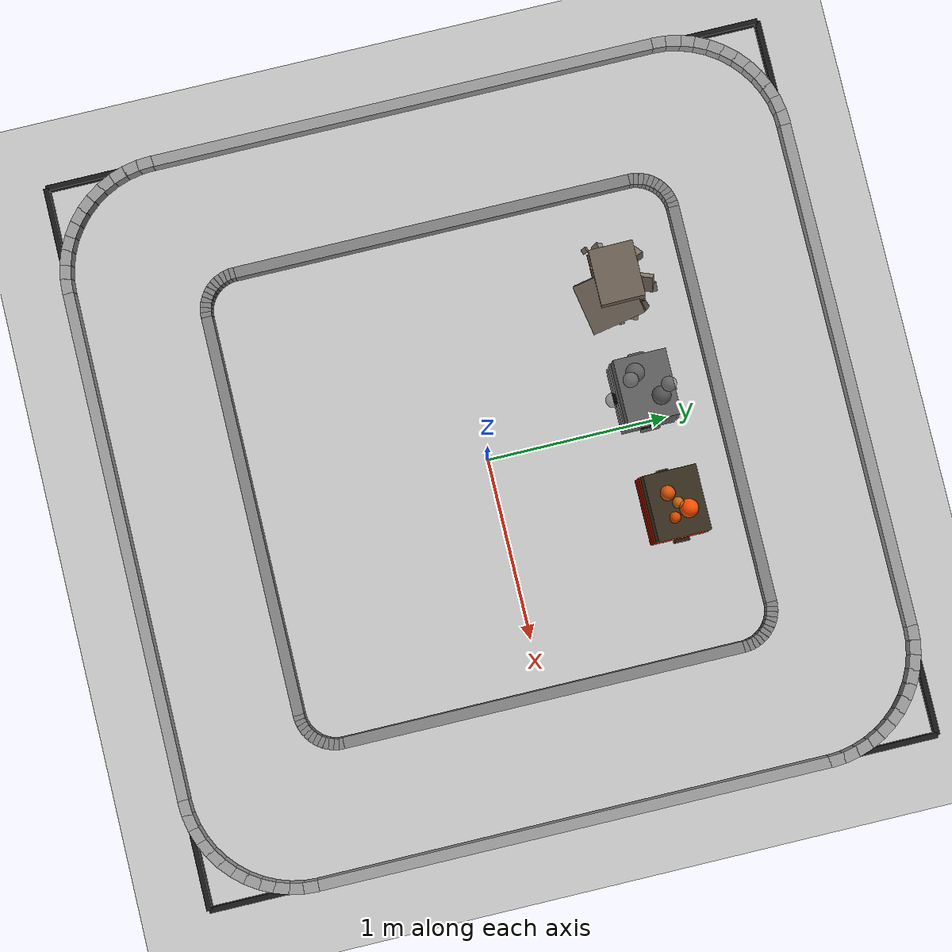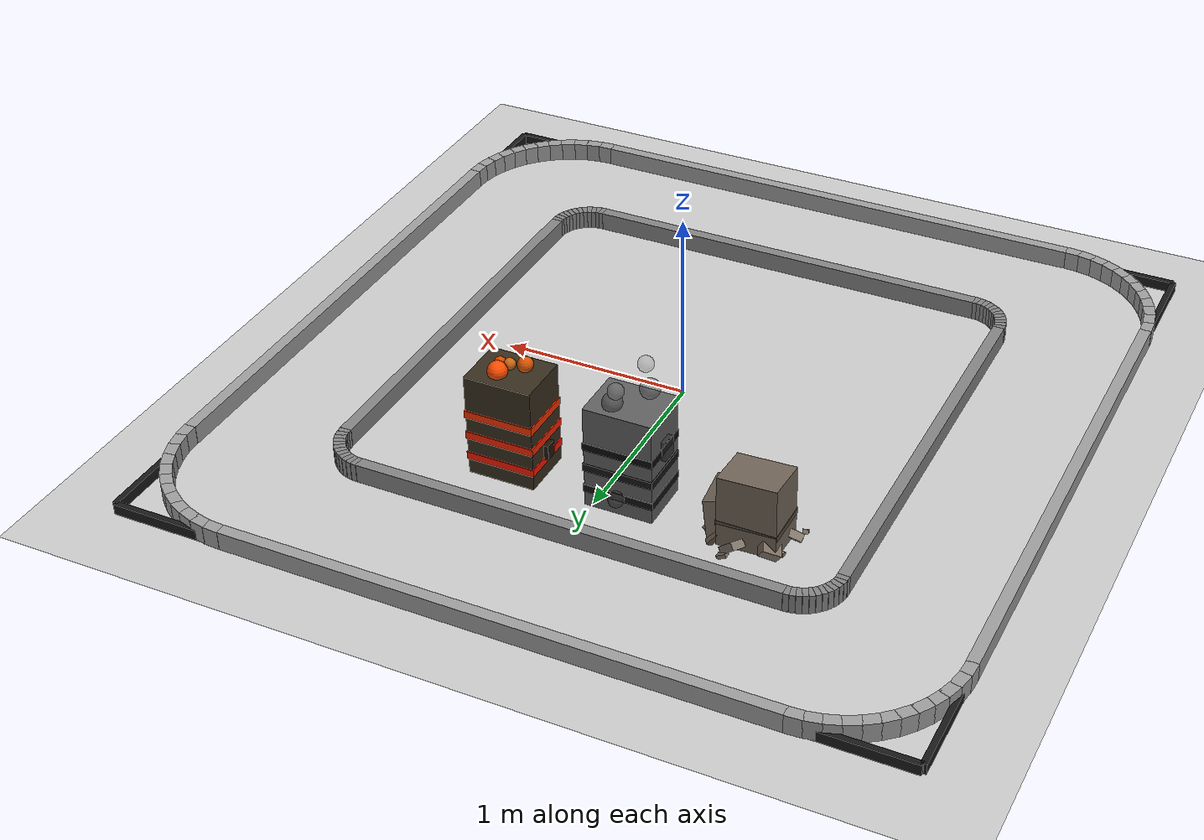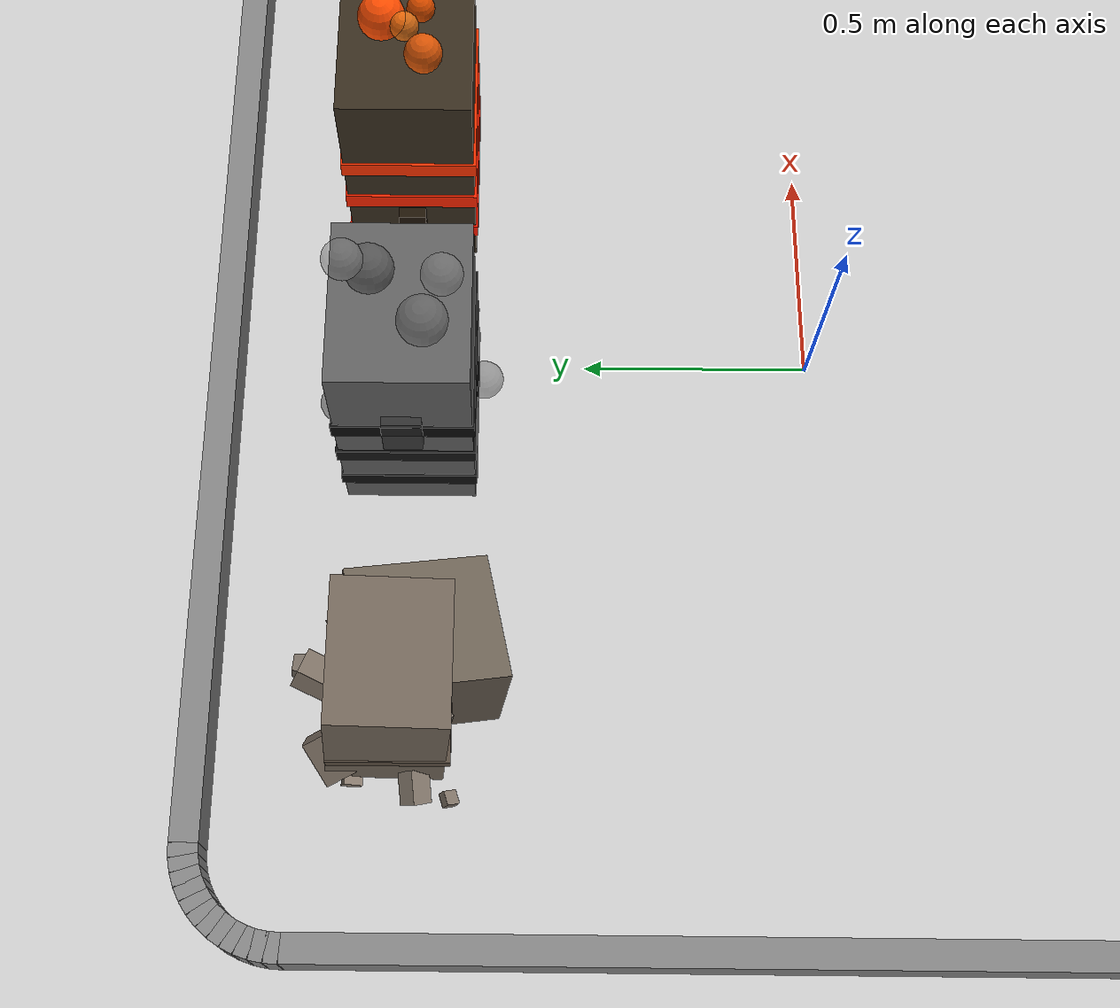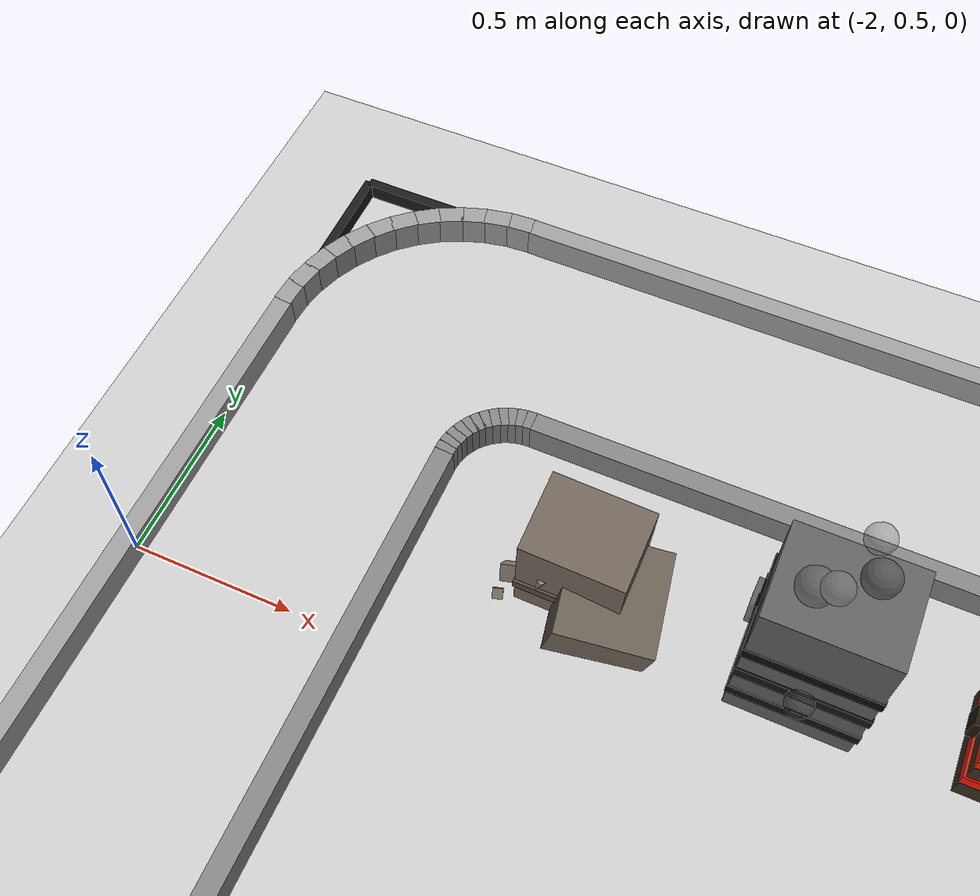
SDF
<sdf version="1.6">
 <world name="test">
  <light name="sun" type="directional">
   <pose>0 0 10 0 -0 0</pose>
   <diffuse>0.8 0.8 0.8 1</diffuse>
   <specular>0.2 0.2 0.2 1</specular>
   <attenuation>
    <range>1000</range>
    <constant>0.9</constant>
    <linear>0.01</linear>
    <quadratic>0.001</quadratic>
   </attenuation>
   <direction>-0.5 0.1 -0.9</direction>
  </light>
  <model name="ground_plane">
   <static>1</static>
   <link name="link">
    <collision name="collision">
     <geometry><plane><normal>0 0 1</normal><size>100 100</size></plane></geometry>
     <surface><friction><ode><mu>100</mu><mu2>50</mu2></ode></friction></surface>
    </collision>
    <visual name="visual">
     <cast_shadows>0</cast_shadows>
     <geometry><plane><normal>0 0 1</normal><size>100 100</size></plane></geometry>
     <material>
      <script><uri>file://media/materials/scripts/gazebo.material</uri><name>Gazebo/Grey</name></script>
     </material>
    </visual>
   </link>
  </model>
  <model name="boundary_line">
   <static>1</static>
   <link name="n">
    <pose>0 2 0.001 0 -0 0</pose>
    <visual name="v">
     <geometry><box><size>4 0.03 0.1</size></box></geometry>
     <material><ambient>0.1 0.1 0.1 1</ambient></material>
    </visual>
   </link>
   <link name="s">
    <pose>0 -2 0.001 0 -0 0</pose>
    <visual name="v">
     <geometry><box><size>4 0.03 0.1</size></box></geometry>
     <material><ambient>0.1 0.1 0.1 1</ambient></material>
    </visual>
   </link>
   <link name="e">
    <pose>2 0 0.001 0 -0 0</pose>
    <visual name="v">
     <geometry><box><size>0.03 4 0.1</size></box></geometry>
     <material><ambient>0.1 0.1 0.1 1</ambient></material>
    </visual>
   </link>
   <link name="w">
    <pose>-2 0 0.001 0 -0 0</pose>
    <visual name="v">
     <geometry><box><size>0.03 4 0.1</size></box></geometry>
     <material><ambient>0.1 0.1 0.1 1</ambient></material>
    </visual>
   </link>
  </model>
  <model name="track_outer">
   <static>1</static>
   <link name="top">
    <pose>0 2 0.05 0 -0 0</pose>
    <visual name="v">
     <geometry><box><size>2.8 0.06 0.1</size></box></geometry>
     <material><ambient>0.62 0.62 0.62 1</ambient></material>
    </visual>
    <collision name="c"><geometry><box><size>2.8 0.06 0.1</size></box></geometry></collision>
   </link>
   <link name="bottom">
    <pose>0 -2 0.05 0 -0 0</pose>
    <visual name="v">
     <geometry><box><size>2.8 0.06 0.1</size></box></geometry>
     <material><ambient>0.62 0.62 0.62 1</ambient></material>
    </visual>
    <collision name="c"><geometry><box><size>2.8 0.06 0.1</size></box></geometry></collision>
   </link>
   <link name="left">
    <pose>-2 0 0.05 0 -0 0</pose>
    <visual name="v">
     <geometry><box><size>0.06 2.8 0.1</size></box></geometry>
     <material><ambient>0.62 0.62 0.62 1</ambient></material>
    </visual>
    <collision name="c"><geometry><box><size>0.06 2.8 0.1</size></box></geometry></collision>
   </link>
   <link name="right">
    <pose>2 0 0.05 0 -0 0</pose>
    <visual name="v">
     <geometry><box><size>0.06 2.8 0.1</size></box></geometry>
     <material><ambient>0.62 0.62 0.62 1</ambient></material>
    </visual>
    <collision name="c"><geometry><box><size>0.06 2.8 0.1</size></box></geometry></collision>
   </link>
   <link name="tr0">
    <pose>1.9987 1.4392 0.05 0 -0 1.6362</pose>
    <visual name="v">
     <geometry><box><size>0.0848 0.06 0.1</size></box></geometry>
     <material><ambient>0.62 0.62 0.62 1</ambient></material>
    </visual>
    <collision name="c"><geometry><box><size>0.0848 0.06 0.1</size></box></geometry></collision>
   </link>
   <link name="tr1">
    <pose>1.9885 1.5171 0.05 0 -0 1.7671</pose>
    <visual name="v">
     <geometry><box><size>0.0848 0.06 0.1</size></box></geometry>
     <material><ambient>0.62 0.62 0.62 1</ambient></material>
    </visual>
    <collision name="c"><geometry><box><size>0.0848 0.06 0.1</size></box></geometry></collision>
   </link>
   <link name="tr2">
    <pose>1.9682 1.5929 0.05 0 -0 1.898</pose>
    <visual name="v">
     <geometry><box><size>0.0848 0.06 0.1</size></box></geometry>
     <material><ambient>0.62 0.62 0.62 1</ambient></material>
    </visual>
    <collision name="c"><geometry><box><size>0.0848 0.06 0.1</size></box></geometry></collision>
   </link>
   <link name="tr3">
    <pose>1.9381 1.6654 0.05 0 -0 2.0289</pose>
    <visual name="v">
     <geometry><box><size>0.0848 0.06 0.1</size></box></geometry>
     <material><ambient>0.62 0.62 0.62 1</ambient></material>
    </visual>
    <collision name="c"><geometry><box><size>0.0848 0.06 0.1</size></box></geometry></collision>
   </link>
   <link name="tr4">
    <pose>1.8989 1.7333 0.05 0 -0 2.1598</pose>
    <visual name="v">
     <geometry><box><size>0.0848 0.06 0.1</size></box></geometry>
     <material><ambient>0.62 0.62 0.62 1</ambient></material>
    </visual>
    <collision name="c"><geometry><box><size>0.0848 0.06 0.1</size></box></geometry></collision>
   </link>
   <link name="tr5">
    <pose>1.8511 1.7956 0.05 0 -0 2.2907</pose>
    <visual name="v">
     <geometry><box><size>0.0848 0.06 0.1</size></box></geometry>
     <material><ambient>0.62 0.62 0.62 1</ambient></material>
    </visual>
    <collision name="c"><geometry><box><size>0.0848 0.06 0.1</size></box></geometry></collision>
   </link>
   <link name="tr6">
    <pose>1.7956 1.8511 0.05 0 -0 2.4216</pose>
    <visual name="v">
     <geometry><box><size>0.0848 0.06 0.1</size></box></geometry>
     <material><ambient>0.62 0.62 0.62 1</ambient></material>
    </visual>
    <collision name="c"><geometry><box><size>0.0848 0.06 0.1</size></box></geometry></collision>
   </link>
   <link name="tr7">
    <pose>1.7333 1.8989 0.05 0 -0 2.5525</pose>
    <visual name="v">
     <geometry><box><size>0.0848 0.06 0.1</size></box></geometry>
     <material><ambient>0.62 0.62 0.62 1</ambient></material>
    </visual>
    <collision name="c"><geometry><box><size>0.0848 0.06 0.1</size></box></geometry></collision>
   </link>
   <link name="tr8">
    <pose>1.6654 1.9381 0.05 0 -0 2.6834</pose>
    <visual name="v">
     <geometry><box><size>0.0848 0.06 0.1</size></box></geometry>
     <material><ambient>0.62 0.62 0.62 1</ambient></material>
    </visual>
    <collision name="c"><geometry><box><size>0.0848 0.06 0.1</size></box></geometry></collision>
   </link>
   <link name="tr9">
    <pose>1.5929 1.9682 0.05 0 -0 2.8143</pose>
    <visual name="v">
     <geometry><box><size>0.0848 0.06 0.1</size></box></geometry>
     <material><ambient>0.62 0.62 0.62 1</ambient></material>
    </visual>
    <collision name="c"><geometry><box><size>0.0848 0.06 0.1</size></box></geometry></collision>
   </link>
   <link name="tr10">
    <pose>1.5171 1.9885 0.05 0 -0 2.9452</pose>
    <visual name="v">
     <geometry><box><size>0.0848 0.06 0.1</size></box></geometry>
     <material><ambient>0.62 0.62 0.62 1</ambient></material>
    </visual>
    <collision name="c"><geometry><box><size>0.0848 0.06 0.1</size></box></geometry></collision>
   </link>
   <link name="tr11">
    <pose>1.4392 1.9987 0.05 0 -0 3.0761</pose>
    <visual name="v">
     <geometry><box><size>0.0848 0.06 0.1</size></box></geometry>
     <material><ambient>0.62 0.62 0.62 1</ambient></material>
    </visual>
    <collision name="c"><geometry><box><size>0.0848 0.06 0.1</size></box></geometry></collision>
   </link>
   <link name="tl0">
    <pose>-1.4392 1.9987 0.05 0 -0 -3.07619</pose>
    <visual name="v">
     <geometry><box><size>0.0848 0.06 0.1</size></box></geometry>
     <material><ambient>0.62 0.62 0.62 1</ambient></material>
    </visual>
    <collision name="c"><geometry><box><size>0.0848 0.06 0.1</size></box></geometry></collision>
   </link>
   <link name="tl1">
    <pose>-1.5171 1.9885 0.05 0 -0 -2.94529</pose>
    <visual name="v">
     <geometry><box><size>0.0848 0.06 0.1</size></box></geometry>
     <material><ambient>0.62 0.62 0.62 1</ambient></material>
    </visual>
    <collision name="c"><geometry><box><size>0.0848 0.06 0.1</size></box></geometry></collision>
   </link>
   <link name="tl2">
    <pose>-1.5929 1.9682 0.05 0 -0 -2.81439</pose>
    <visual name="v">
     <geometry><box><size>0.0848 0.06 0.1</size></box></geometry>
     <material><ambient>0.62 0.62 0.62 1</ambient></material>
    </visual>
    <collision name="c"><geometry><box><size>0.0848 0.06 0.1</size></box></geometry></collision>
   </link>
   <link name="tl3">
    <pose>-1.6654 1.9381 0.05 0 -0 -2.68349</pose>
    <visual name="v">
     <geometry><box><size>0.0848 0.06 0.1</size></box></geometry>
     <material><ambient>0.62 0.62 0.62 1</ambient></material>
    </visual>
    <collision name="c"><geometry><box><size>0.0848 0.06 0.1</size></box></geometry></collision>
   </link>
   <link name="tl4">
    <pose>-1.7333 1.8989 0.05 0 -0 -2.55259</pose>
    <visual name="v">
     <geometry><box><size>0.0848 0.06 0.1</size></box></geometry>
     <material><ambient>0.62 0.62 0.62 1</ambient></material>
    </visual>
    <collision name="c"><geometry><box><size>0.0848 0.06 0.1</size></box></geometry></collision>
   </link>
   <link name="tl5">
    <pose>-1.7956 1.8511 0.05 0 -0 -2.42169</pose>
    <visual name="v">
     <geometry><box><size>0.0848 0.06 0.1</size></box></geometry>
     <material><ambient>0.62 0.62 0.62 1</ambient></material>
    </visual>
    <collision name="c"><geometry><box><size>0.0848 0.06 0.1</size></box></geometry></collision>
   </link>
   <link name="tl6">
    <pose>-1.8511 1.7956 0.05 0 -0 -2.29079</pose>
    <visual name="v">
     <geometry><box><size>0.0848 0.06 0.1</size></box></geometry>
     <material><ambient>0.62 0.62 0.62 1</ambient></material>
    </visual>
    <collision name="c"><geometry><box><size>0.0848 0.06 0.1</size></box></geometry></collision>
   </link>
   <link name="tl7">
    <pose>-1.8989 1.7333 0.05 0 -0 -2.15989</pose>
    <visual name="v">
     <geometry><box><size>0.0848 0.06 0.1</size></box></geometry>
     <material><ambient>0.62 0.62 0.62 1</ambient></material>
    </visual>
    <collision name="c"><geometry><box><size>0.0848 0.06 0.1</size></box></geometry></collision>
   </link>
   <link name="tl8">
    <pose>-1.9381 1.6654 0.05 0 -0 -2.02899</pose>
    <visual name="v">
     <geometry><box><size>0.0848 0.06 0.1</size></box></geometry>
     <material><ambient>0.62 0.62 0.62 1</ambient></material>
    </visual>
    <collision name="c"><geometry><box><size>0.0848 0.06 0.1</size></box></geometry></collision>
   </link>
   <link name="tl9">
    <pose>-1.9682 1.5929 0.05 0 -0 -1.89809</pose>
    <visual name="v">
     <geometry><box><size>0.0848 0.06 0.1</size></box></geometry>
     <material><ambient>0.62 0.62 0.62 1</ambient></material>
    </visual>
    <collision name="c"><geometry><box><size>0.0848 0.06 0.1</size></box></geometry></collision>
   </link>
   <link name="tl10">
    <pose>-1.9885 1.5171 0.05 0 -0 -1.76719</pose>
    <visual name="v">
     <geometry><box><size>0.0848 0.06 0.1</size></box></geometry>
     <material><ambient>0.62 0.62 0.62 1</ambient></material>
    </visual>
    <collision name="c"><geometry><box><size>0.0848 0.06 0.1</size></box></geometry></collision>
   </link>
   <link name="tl11">
    <pose>-1.9987 1.4392 0.05 0 -0 -1.63628</pose>
    <visual name="v">
     <geometry><box><size>0.0848 0.06 0.1</size></box></geometry>
     <material><ambient>0.62 0.62 0.62 1</ambient></material>
    </visual>
    <collision name="c"><geometry><box><size>0.0848 0.06 0.1</size></box></geometry></collision>
   </link>
   <link name="bl0">
    <pose>-1.9987 -1.4392 0.05 0 -0 -1.50538</pose>
    <visual name="v">
     <geometry><box><size>0.0848 0.06 0.1</size></box></geometry>
     <material><ambient>0.62 0.62 0.62 1</ambient></material>
    </visual>
    <collision name="c"><geometry><box><size>0.0848 0.06 0.1</size></box></geometry></collision>
   </link>
   <link name="bl1">
    <pose>-1.9885 -1.5171 0.05 0 -0 -1.37448</pose>
    <visual name="v">
     <geometry><box><size>0.0848 0.06 0.1</size></box></geometry>
     <material><ambient>0.62 0.62 0.62 1</ambient></material>
    </visual>
    <collision name="c"><geometry><box><size>0.0848 0.06 0.1</size></box></geometry></collision>
   </link>
   <link name="bl2">
    <pose>-1.9682 -1.5929 0.05 0 -0 -1.24358</pose>
    <visual name="v">
     <geometry><box><size>0.0848 0.06 0.1</size></box></geometry>
     <material><ambient>0.62 0.62 0.62 1</ambient></material>
    </visual>
    <collision name="c"><geometry><box><size>0.0848 0.06 0.1</size></box></geometry></collision>
   </link>
   <link name="bl3">
    <pose>-1.9381 -1.6654 0.05 0 -0 -1.11268</pose>
    <visual name="v">
     <geometry><box><size>0.0848 0.06 0.1</size></box></geometry>
     <material><ambient>0.62 0.62 0.62 1</ambient></material>
    </visual>
    <collision name="c"><geometry><box><size>0.0848 0.06 0.1</size></box></geometry></collision>
   </link>
   <link name="bl4">
    <pose>-1.8989 -1.7333 0.05 0 -0 -0.981785</pose>
    <visual name="v">
     <geometry><box><size>0.0848 0.06 0.1</size></box></geometry>
     <material><ambient>0.62 0.62 0.62 1</ambient></material>
    </visual>
    <collision name="c"><geometry><box><size>0.0848 0.06 0.1</size></box></geometry></collision>
   </link>
   <link name="bl5">
    <pose>-1.8511 -1.7956 0.05 0 -0 -0.850885</pose>
    <visual name="v">
     <geometry><box><size>0.0848 0.06 0.1</size></box></geometry>
     <material><ambient>0.62 0.62 0.62 1</ambient></material>
    </visual>
    <collision name="c"><geometry><box><size>0.0848 0.06 0.1</size></box></geometry></collision>
   </link>
   <link name="bl6">
    <pose>-1.7956 -1.8511 0.05 0 -0 -0.719985</pose>
    <visual name="v">
     <geometry><box><size>0.0848 0.06 0.1</size></box></geometry>
     <material><ambient>0.62 0.62 0.62 1</ambient></material>
    </visual>
    <collision name="c"><geometry><box><size>0.0848 0.06 0.1</size></box></geometry></collision>
   </link>
   <link name="bl7">
    <pose>-1.7333 -1.8989 0.05 0 -0 -0.589085</pose>
    <visual name="v">
     <geometry><box><size>0.0848 0.06 0.1</size></box></geometry>
     <material><ambient>0.62 0.62 0.62 1</ambient></material>
    </visual>
    <collision name="c"><geometry><box><size>0.0848 0.06 0.1</size></box></geometry></collision>
   </link>
   <link name="bl8">
    <pose>-1.6654 -1.9381 0.05 0 -0 -0.458185</pose>
    <visual name="v">
     <geometry><box><size>0.0848 0.06 0.1</size></box></geometry>
     <material><ambient>0.62 0.62 0.62 1</ambient></material>
    </visual>
    <collision name="c"><geometry><box><size>0.0848 0.06 0.1</size></box></geometry></collision>
   </link>
   <link name="bl9">
    <pose>-1.5929 -1.9682 0.05 0 -0 -0.327285</pose>
    <visual name="v">
     <geometry><box><size>0.0848 0.06 0.1</size></box></geometry>
     <material><ambient>0.62 0.62 0.62 1</ambient></material>
    </visual>
    <collision name="c"><geometry><box><size>0.0848 0.06 0.1</size></box></geometry></collision>
   </link>
   <link name="bl10">
    <pose>-1.5171 -1.9885 0.05 0 -0 -0.196385</pose>
    <visual name="v">
     <geometry><box><size>0.0848 0.06 0.1</size></box></geometry>
     <material><ambient>0.62 0.62 0.62 1</ambient></material>
    </visual>
    <collision name="c"><geometry><box><size>0.0848 0.06 0.1</size></box></geometry></collision>
   </link>
   <link name="bl11">
    <pose>-1.4392 -1.9987 0.05 0 -0 -0.065485</pose>
    <visual name="v">
     <geometry><box><size>0.0848 0.06 0.1</size></box></geometry>
     <material><ambient>0.62 0.62 0.62 1</ambient></material>
    </visual>
    <collision name="c"><geometry><box><size>0.0848 0.06 0.1</size></box></geometry></collision>
   </link>
   <link name="br0">
    <pose>1.4392 -1.9987 0.05 0 -0 0.065415</pose>
    <visual name="v">
     <geometry><box><size>0.0848 0.06 0.1</size></box></geometry>
     <material><ambient>0.62 0.62 0.62 1</ambient></material>
    </visual>
    <collision name="c"><geometry><box><size>0.0848 0.06 0.1</size></box></geometry></collision>
   </link>
   <link name="br1">
    <pose>1.5171 -1.9885 0.05 0 -0 0.196315</pose>
    <visual name="v">
     <geometry><box><size>0.0848 0.06 0.1</size></box></geometry>
     <material><ambient>0.62 0.62 0.62 1</ambient></material>
    </visual>
    <collision name="c"><geometry><box><size>0.0848 0.06 0.1</size></box></geometry></collision>
   </link>
   <link name="br2">
    <pose>1.5929 -1.9682 0.05 0 -0 0.327215</pose>
    <visual name="v">
     <geometry><box><size>0.0848 0.06 0.1</size></box></geometry>
     <material><ambient>0.62 0.62 0.62 1</ambient></material>
    </visual>
    <collision name="c"><geometry><box><size>0.0848 0.06 0.1</size></box></geometry></collision>
   </link>
   <link name="br3">
    <pose>1.6654 -1.9381 0.05 0 -0 0.458115</pose>
    <visual name="v">
     <geometry><box><size>0.0848 0.06 0.1</size></box></geometry>
     <material><ambient>0.62 0.62 0.62 1</ambient></material>
    </visual>
    <collision name="c"><geometry><box><size>0.0848 0.06 0.1</size></box></geometry></collision>
   </link>
   <link name="br4">
    <pose>1.7333 -1.8989 0.05 0 -0 0.589015</pose>
    <visual name="v">
     <geometry><box><size>0.0848 0.06 0.1</size></box></geometry>
     <material><ambient>0.62 0.62 0.62 1</ambient></material>
    </visual>
    <collision name="c"><geometry><box><size>0.0848 0.06 0.1</size></box></geometry></collision>
   </link>
   <link name="br5">
    <pose>1.7956 -1.8511 0.05 0 -0 0.719915</pose>
    <visual name="v">
     <geometry><box><size>0.0848 0.06 0.1</size></box></geometry>
     <material><ambient>0.62 0.62 0.62 1</ambient></material>
    </visual>
    <collision name="c"><geometry><box><size>0.0848 0.06 0.1</size></box></geometry></collision>
   </link>
   <link name="br6">
    <pose>1.8511 -1.7956 0.05 0 -0 0.850815</pose>
    <visual name="v">
     <geometry><box><size>0.0848 0.06 0.1</size></box></geometry>
     <material><ambient>0.62 0.62 0.62 1</ambient></material>
    </visual>
    <collision name="c"><geometry><box><size>0.0848 0.06 0.1</size></box></geometry></collision>
   </link>
   <link name="br7">
    <pose>1.8989 -1.7333 0.05 0 -0 0.981715</pose>
    <visual name="v">
     <geometry><box><size>0.0848 0.06 0.1</size></box></geometry>
     <material><ambient>0.62 0.62 0.62 1</ambient></material>
    </visual>
    <collision name="c"><geometry><box><size>0.0848 0.06 0.1</size></box></geometry></collision>
   </link>
   <link name="br8">
    <pose>1.9381 -1.6654 0.05 0 -0 1.11261</pose>
    <visual name="v">
     <geometry><box><size>0.0848 0.06 0.1</size></box></geometry>
     <material><ambient>0.62 0.62 0.62 1</ambient></material>
    </visual>
    <collision name="c"><geometry><box><size>0.0848 0.06 0.1</size></box></geometry></collision>
   </link>
   <link name="br9">
    <pose>1.9682 -1.5929 0.05 0 -0 1.24351</pose>
    <visual name="v">
     <geometry><box><size>0.0848 0.06 0.1</size></box></geometry>
     <material><ambient>0.62 0.62 0.62 1</ambient></material>
    </visual>
    <collision name="c"><geometry><box><size>0.0848 0.06 0.1</size></box></geometry></collision>
   </link>
   <link name="br10">
    <pose>1.9885 -1.5171 0.05 0 -0 1.37441</pose>
    <visual name="v">
     <geometry><box><size>0.0848 0.06 0.1</size></box></geometry>
     <material><ambient>0.62 0.62 0.62 1</ambient></material>
    </visual>
    <collision name="c"><geometry><box><size>0.0848 0.06 0.1</size></box></geometry></collision>
   </link>
   <link name="br11">
    <pose>1.9987 -1.4392 0.05 0 -0 1.50531</pose>
    <visual name="v">
     <geometry><box><size>0.0848 0.06 0.1</size></box></geometry>
     <material><ambient>0.62 0.62 0.62 1</ambient></material>
    </visual>
    <collision name="c"><geometry><box><size>0.0848 0.06 0.1</size></box></geometry></collision>
   </link>
  </model>
  <model name="track_inner">
   <static>1</static>
   <link name="top">
    <pose>0 1.3 0.05 0 -0 0</pose>
    <visual name="v">
     <geometry><box><size>2.2 0.06 0.1</size></box></geometry>
     <material><ambient>0.52 0.52 0.52 1</ambient></material>
    </visual>
    <collision name="c"><geometry><box><size>2.2 0.06 0.1</size></box></geometry></collision>
   </link>
   <link name="bottom">
    <pose>0 -1.3 0.05 0 -0 0</pose>
    <visual name="v">
     <geometry><box><size>2.2 0.06 0.1</size></box></geometry>
     <material><ambient>0.52 0.52 0.52 1</ambient></material>
    </visual>
    <collision name="c"><geometry><box><size>2.2 0.06 0.1</size></box></geometry></collision>
   </link>
   <link name="left">
    <pose>-1.3 0 0.05 0 -0 0</pose>
    <visual name="v">
     <geometry><box><size>0.06 2.2 0.1</size></box></geometry>
     <material><ambient>0.52 0.52 0.52 1</ambient></material>
    </visual>
    <collision name="c"><geometry><box><size>0.06 2.2 0.1</size></box></geometry></collision>
   </link>
   <link name="right">
    <pose>1.3 0 0.05 0 -0 0</pose>
    <visual name="v">
     <geometry><box><size>0.06 2.2 0.1</size></box></geometry>
     <material><ambient>0.52 0.52 0.52 1</ambient></material>
    </visual>
    <collision name="c"><geometry><box><size>0.06 2.2 0.1</size></box></geometry></collision>
   </link>
   <link name="itr0">
    <pose>1.2996 1.1131 0.05 0 -0 1.6362</pose>
    <visual name="v">
     <geometry><box><size>0.0283 0.06 0.1</size></box></geometry>
     <material><ambient>0.52 0.52 0.52 1</ambient></material>
    </visual>
    <collision name="c"><geometry><box><size>0.0283 0.06 0.1</size></box></geometry></collision>
   </link>
   <link name="itr1">
    <pose>1.2962 1.139 0.05 0 -0 1.7671</pose>
    <visual name="v">
     <geometry><box><size>0.0283 0.06 0.1</size></box></geometry>
     <material><ambient>0.52 0.52 0.52 1</ambient></material>
    </visual>
    <collision name="c"><geometry><box><size>0.0283 0.06 0.1</size></box></geometry></collision>
   </link>
   <link name="itr2">
    <pose>1.2894 1.1643 0.05 0 -0 1.898</pose>
    <visual name="v">
     <geometry><box><size>0.0283 0.06 0.1</size></box></geometry>
     <material><ambient>0.52 0.52 0.52 1</ambient></material>
    </visual>
    <collision name="c"><geometry><box><size>0.0283 0.06 0.1</size></box></geometry></collision>
   </link>
   <link name="itr3">
    <pose>1.2794 1.1885 0.05 0 -0 2.0289</pose>
    <visual name="v">
     <geometry><box><size>0.0283 0.06 0.1</size></box></geometry>
     <material><ambient>0.52 0.52 0.52 1</ambient></material>
    </visual>
    <collision name="c"><geometry><box><size>0.0283 0.06 0.1</size></box></geometry></collision>
   </link>
   <link name="itr4">
    <pose>1.2663 1.2111 0.05 0 -0 2.1598</pose>
    <visual name="v">
     <geometry><box><size>0.0283 0.06 0.1</size></box></geometry>
     <material><ambient>0.52 0.52 0.52 1</ambient></material>
    </visual>
    <collision name="c"><geometry><box><size>0.0283 0.06 0.1</size></box></geometry></collision>
   </link>
   <link name="itr5">
    <pose>1.2504 1.2319 0.05 0 -0 2.2907</pose>
    <visual name="v">
     <geometry><box><size>0.0283 0.06 0.1</size></box></geometry>
     <material><ambient>0.52 0.52 0.52 1</ambient></material>
    </visual>
    <collision name="c"><geometry><box><size>0.0283 0.06 0.1</size></box></geometry></collision>
   </link>
   <link name="itr6">
    <pose>1.2319 1.2504 0.05 0 -0 2.4216</pose>
    <visual name="v">
     <geometry><box><size>0.0283 0.06 0.1</size></box></geometry>
     <material><ambient>0.52 0.52 0.52 1</ambient></material>
    </visual>
    <collision name="c"><geometry><box><size>0.0283 0.06 0.1</size></box></geometry></collision>
   </link>
   <link name="itr7">
    <pose>1.2111 1.2663 0.05 0 -0 2.5525</pose>
    <visual name="v">
     <geometry><box><size>0.0283 0.06 0.1</size></box></geometry>
     <material><ambient>0.52 0.52 0.52 1</ambient></material>
    </visual>
    <collision name="c"><geometry><box><size>0.0283 0.06 0.1</size></box></geometry></collision>
   </link>
   <link name="itr8">
    <pose>1.1885 1.2794 0.05 0 -0 2.6834</pose>
    <visual name="v">
     <geometry><box><size>0.0283 0.06 0.1</size></box></geometry>
     <material><ambient>0.52 0.52 0.52 1</ambient></material>
    </visual>
    <collision name="c"><geometry><box><size>0.0283 0.06 0.1</size></box></geometry></collision>
   </link>
   <link name="itr9">
    <pose>1.1643 1.2894 0.05 0 -0 2.8143</pose>
    <visual name="v">
     <geometry><box><size>0.0283 0.06 0.1</size></box></geometry>
     <material><ambient>0.52 0.52 0.52 1</ambient></material>
    </visual>
    <collision name="c"><geometry><box><size>0.0283 0.06 0.1</size></box></geometry></collision>
   </link>
   <link name="itr10">
    <pose>1.139 1.2962 0.05 0 -0 2.9452</pose>
    <visual name="v">
     <geometry><box><size>0.0283 0.06 0.1</size></box></geometry>
     <material><ambient>0.52 0.52 0.52 1</ambient></material>
    </visual>
    <collision name="c"><geometry><box><size>0.0283 0.06 0.1</size></box></geometry></collision>
   </link>
   <link name="itr11">
    <pose>1.1131 1.2996 0.05 0 -0 3.0761</pose>
    <visual name="v">
     <geometry><box><size>0.0283 0.06 0.1</size></box></geometry>
     <material><ambient>0.52 0.52 0.52 1</ambient></material>
    </visual>
    <collision name="c"><geometry><box><size>0.0283 0.06 0.1</size></box></geometry></collision>
   </link>
   <link name="itl0">
    <pose>-1.1131 1.2996 0.05 0 -0 -3.07619</pose>
    <visual name="v">
     <geometry><box><size>0.0283 0.06 0.1</size></box></geometry>
     <material><ambient>0.52 0.52 0.52 1</ambient></material>
    </visual>
    <collision name="c"><geometry><box><size>0.0283 0.06 0.1</size></box></geometry></collision>
   </link>
   <link name="itl1">
    <pose>-1.139 1.2962 0.05 0 -0 -2.94529</pose>
    <visual name="v">
     <geometry><box><size>0.0283 0.06 0.1</size></box></geometry>
     <material><ambient>0.52 0.52 0.52 1</ambient></material>
    </visual>
    <collision name="c"><geometry><box><size>0.0283 0.06 0.1</size></box></geometry></collision>
   </link>
   <link name="itl2">
    <pose>-1.1643 1.2894 0.05 0 -0 -2.81439</pose>
    <visual name="v">
     <geometry><box><size>0.0283 0.06 0.1</size></box></geometry>
     <material><ambient>0.52 0.52 0.52 1</ambient></material>
    </visual>
    <collision name="c"><geometry><box><size>0.0283 0.06 0.1</size></box></geometry></collision>
   </link>
   <link name="itl3">
    <pose>-1.1885 1.2794 0.05 0 -0 -2.68349</pose>
    <visual name="v">
     <geometry><box><size>0.0283 0.06 0.1</size></box></geometry>
     <material><ambient>0.52 0.52 0.52 1</ambient></material>
    </visual>
    <collision name="c"><geometry><box><size>0.0283 0.06 0.1</size></box></geometry></collision>
   </link>
   <link name="itl4">
    <pose>-1.2111 1.2663 0.05 0 -0 -2.55259</pose>
    <visual name="v">
     <geometry><box><size>0.0283 0.06 0.1</size></box></geometry>
     <material><ambient>0.52 0.52 0.52 1</ambient></material>
    </visual>
    <collision name="c"><geometry><box><size>0.0283 0.06 0.1</size></box></geometry></collision>
   </link>
   <link name="itl5">
    <pose>-1.2319 1.2504 0.05 0 -0 -2.42169</pose>
    <visual name="v">
     <geometry><box><size>0.0283 0.06 0.1</size></box></geometry>
     <material><ambient>0.52 0.52 0.52 1</ambient></material>
    </visual>
    <collision name="c"><geometry><box><size>0.0283 0.06 0.1</size></box></geometry></collision>
   </link>
   <link name="itl6">
    <pose>-1.2504 1.2319 0.05 0 -0 -2.29079</pose>
    <visual name="v">
     <geometry><box><size>0.0283 0.06 0.1</size></box></geometry>
     <material><ambient>0.52 0.52 0.52 1</ambient></material>
    </visual>
    <collision name="c"><geometry><box><size>0.0283 0.06 0.1</size></box></geometry></collision>
   </link>
   <link name="itl7">
    <pose>-1.2663 1.2111 0.05 0 -0 -2.15989</pose>
    <visual name="v">
     <geometry><box><size>0.0283 0.06 0.1</size></box></geometry>
     <material><ambient>0.52 0.52 0.52 1</ambient></material>
    </visual>
    <collision name="c"><geometry><box><size>0.0283 0.06 0.1</size></box></geometry></collision>
   </link>
   <link name="itl8">
    <pose>-1.2794 1.1885 0.05 0 -0 -2.02899</pose>
    <visual name="v">
     <geometry><box><size>0.0283 0.06 0.1</size></box></geometry>
     <material><ambient>0.52 0.52 0.52 1</ambient></material>
    </visual>
    <collision name="c"><geometry><box><size>0.0283 0.06 0.1</size></box></geometry></collision>
   </link>
   <link name="itl9">
    <pose>-1.2894 1.1643 0.05 0 -0 -1.89809</pose>
    <visual name="v">
     <geometry><box><size>0.0283 0.06 0.1</size></box></geometry>
     <material><ambient>0.52 0.52 0.52 1</ambient></material>
    </visual>
    <collision name="c"><geometry><box><size>0.0283 0.06 0.1</size></box></geometry></collision>
   </link>
   <link name="itl10">
    <pose>-1.2962 1.139 0.05 0 -0 -1.76719</pose>
    <visual name="v">
     <geometry><box><size>0.0283 0.06 0.1</size></box></geometry>
     <material><ambient>0.52 0.52 0.52 1</ambient></material>
    </visual>
    <collision name="c"><geometry><box><size>0.0283 0.06 0.1</size></box></geometry></collision>
   </link>
   <link name="itl11">
    <pose>-1.2996 1.1131 0.05 0 -0 -1.63628</pose>
    <visual name="v">
     <geometry><box><size>0.0283 0.06 0.1</size></box></geometry>
     <material><ambient>0.52 0.52 0.52 1</ambient></material>
    </visual>
    <collision name="c"><geometry><box><size>0.0283 0.06 0.1</size></box></geometry></collision>
   </link>
   <link name="ibl0">
    <pose>-1.2996 -1.1131 0.05 0 -0 -1.50538</pose>
    <visual name="v">
     <geometry><box><size>0.0283 0.06 0.1</size></box></geometry>
     <material><ambient>0.52 0.52 0.52 1</ambient></material>
    </visual>
    <collision name="c"><geometry><box><size>0.0283 0.06 0.1</size></box></geometry></collision>
   </link>
   <link name="ibl1">
    <pose>-1.2962 -1.139 0.05 0 -0 -1.37448</pose>
    <visual name="v">
     <geometry><box><size>0.0283 0.06 0.1</size></box></geometry>
     <material><ambient>0.52 0.52 0.52 1</ambient></material>
    </visual>
    <collision name="c"><geometry><box><size>0.0283 0.06 0.1</size></box></geometry></collision>
   </link>
   <link name="ibl2">
    <pose>-1.2894 -1.1643 0.05 0 -0 -1.24358</pose>
    <visual name="v">
     <geometry><box><size>0.0283 0.06 0.1</size></box></geometry>
     <material><ambient>0.52 0.52 0.52 1</ambient></material>
    </visual>
    <collision name="c"><geometry><box><size>0.0283 0.06 0.1</size></box></geometry></collision>
   </link>
   <link name="ibl3">
    <pose>-1.2794 -1.1885 0.05 0 -0 -1.11268</pose>
    <visual name="v">
     <geometry><box><size>0.0283 0.06 0.1</size></box></geometry>
     <material><ambient>0.52 0.52 0.52 1</ambient></material>
    </visual>
    <collision name="c"><geometry><box><size>0.0283 0.06 0.1</size></box></geometry></collision>
   </link>
   <link name="ibl4">
    <pose>-1.2663 -1.2111 0.05 0 -0 -0.981785</pose>
    <visual name="v">
     <geometry><box><size>0.0283 0.06 0.1</size></box></geometry>
     <material><ambient>0.52 0.52 0.52 1</ambient></material>
    </visual>
    <collision name="c"><geometry><box><size>0.0283 0.06 0.1</size></box></geometry></collision>
   </link>
   <link name="ibl5">
    <pose>-1.2504 -1.2319 0.05 0 -0 -0.850885</pose>
    <visual name="v">
     <geometry><box><size>0.0283 0.06 0.1</size></box></geometry>
     <material><ambient>0.52 0.52 0.52 1</ambient></material>
    </visual>
    <collision name="c"><geometry><box><size>0.0283 0.06 0.1</size></box></geometry></collision>
   </link>
   <link name="ibl6">
    <pose>-1.2319 -1.2504 0.05 0 -0 -0.719985</pose>
    <visual name="v">
     <geometry><box><size>0.0283 0.06 0.1</size></box></geometry>
     <material><ambient>0.52 0.52 0.52 1</ambient></material>
    </visual>
    <collision name="c"><geometry><box><size>0.0283 0.06 0.1</size></box></geometry></collision>
   </link>
   <link name="ibl7">
    <pose>-1.2111 -1.2663 0.05 0 -0 -0.589085</pose>
    <visual name="v">
     <geometry><box><size>0.0283 0.06 0.1</size></box></geometry>
     <material><ambient>0.52 0.52 0.52 1</ambient></material>
    </visual>
    <collision name="c"><geometry><box><size>0.0283 0.06 0.1</size></box></geometry></collision>
   </link>
   <link name="ibl8">
    <pose>-1.1885 -1.2794 0.05 0 -0 -0.458185</pose>
    <visual name="v">
     <geometry><box><size>0.0283 0.06 0.1</size></box></geometry>
     <material><ambient>0.52 0.52 0.52 1</ambient></material>
    </visual>
    <collision name="c"><geometry><box><size>0.0283 0.06 0.1</size></box></geometry></collision>
   </link>
   <link name="ibl9">
    <pose>-1.1643 -1.2894 0.05 0 -0 -0.327285</pose>
    <visual name="v">
     <geometry><box><size>0.0283 0.06 0.1</size></box></geometry>
     <material><ambient>0.52 0.52 0.52 1</ambient></material>
    </visual>
    <collision name="c"><geometry><box><size>0.0283 0.06 0.1</size></box></geometry></collision>
   </link>
   <link name="ibl10">
    <pose>-1.139 -1.2962 0.05 0 -0 -0.196385</pose>
    <visual name="v">
     <geometry><box><size>0.0283 0.06 0.1</size></box></geometry>
     <material><ambient>0.52 0.52 0.52 1</ambient></material>
    </visual>
    <collision name="c"><geometry><box><size>0.0283 0.06 0.1</size></box></geometry></collision>
   </link>
   <link name="ibl11">
    <pose>-1.1131 -1.2996 0.05 0 -0 -0.065485</pose>
    <visual name="v">
     <geometry><box><size>0.0283 0.06 0.1</size></box></geometry>
     <material><ambient>0.52 0.52 0.52 1</ambient></material>
    </visual>
    <collision name="c"><geometry><box><size>0.0283 0.06 0.1</size></box></geometry></collision>
   </link>
   <link name="ibr0">
    <pose>1.1131 -1.2996 0.05 0 -0 0.065415</pose>
    <visual name="v">
     <geometry><box><size>0.0283 0.06 0.1</size></box></geometry>
     <material><ambient>0.52 0.52 0.52 1</ambient></material>
    </visual>
    <collision name="c"><geometry><box><size>0.0283 0.06 0.1</size></box></geometry></collision>
   </link>
   <link name="ibr1">
    <pose>1.139 -1.2962 0.05 0 -0 0.196315</pose>
    <visual name="v">
     <geometry><box><size>0.0283 0.06 0.1</size></box></geometry>
     <material><ambient>0.52 0.52 0.52 1</ambient></material>
    </visual>
    <collision name="c"><geometry><box><size>0.0283 0.06 0.1</size></box></geometry></collision>
   </link>
   <link name="ibr2">
    <pose>1.1643 -1.2894 0.05 0 -0 0.327215</pose>
    <visual name="v">
     <geometry><box><size>0.0283 0.06 0.1</size></box></geometry>
     <material><ambient>0.52 0.52 0.52 1</ambient></material>
    </visual>
    <collision name="c"><geometry><box><size>0.0283 0.06 0.1</size></box></geometry></collision>
   </link>
   <link name="ibr3">
    <pose>1.1885 -1.2794 0.05 0 -0 0.458115</pose>
    <visual name="v">
     <geometry><box><size>0.0283 0.06 0.1</size></box></geometry>
     <material><ambient>0.52 0.52 0.52 1</ambient></material>
    </visual>
    <collision name="c"><geometry><box><size>0.0283 0.06 0.1</size></box></geometry></collision>
   </link>
   <link name="ibr4">
    <pose>1.2111 -1.2663 0.05 0 -0 0.589015</pose>
    <visual name="v">
     <geometry><box><size>0.0283 0.06 0.1</size></box></geometry>
     <material><ambient>0.52 0.52 0.52 1</ambient></material>
    </visual>
    <collision name="c"><geometry><box><size>0.0283 0.06 0.1</size></box></geometry></collision>
   </link>
   <link name="ibr5">
    <pose>1.2319 -1.2504 0.05 0 -0 0.719915</pose>
    <visual name="v">
     <geometry><box><size>0.0283 0.06 0.1</size></box></geometry>
     <material><ambient>0.52 0.52 0.52 1</ambient></material>
    </visual>
    <collision name="c"><geometry><box><size>0.0283 0.06 0.1</size></box></geometry></collision>
   </link>
   <link name="ibr6">
    <pose>1.2504 -1.2319 0.05 0 -0 0.850815</pose>
    <visual name="v">
     <geometry><box><size>0.0283 0.06 0.1</size></box></geometry>
     <material><ambient>0.52 0.52 0.52 1</ambient></material>
    </visual>
    <collision name="c"><geometry><box><size>0.0283 0.06 0.1</size></box></geometry></collision>
   </link>
   <link name="ibr7">
    <pose>1.2663 -1.2111 0.05 0 -0 0.981715</pose>
    <visual name="v">
     <geometry><box><size>0.0283 0.06 0.1</size></box></geometry>
     <material><ambient>0.52 0.52 0.52 1</ambient></material>
    </visual>
    <collision name="c"><geometry><box><size>0.0283 0.06 0.1</size></box></geometry></collision>
   </link>
   <link name="ibr8">
    <pose>1.2794 -1.1885 0.05 0 -0 1.11261</pose>
    <visual name="v">
     <geometry><box><size>0.0283 0.06 0.1</size></box></geometry>
     <material><ambient>0.52 0.52 0.52 1</ambient></material>
    </visual>
    <collision name="c"><geometry><box><size>0.0283 0.06 0.1</size></box></geometry></collision>
   </link>
   <link name="ibr9">
    <pose>1.2894 -1.1643 0.05 0 -0 1.24351</pose>
    <visual name="v">
     <geometry><box><size>0.0283 0.06 0.1</size></box></geometry>
     <material><ambient>0.52 0.52 0.52 1</ambient></material>
    </visual>
    <collision name="c"><geometry><box><size>0.0283 0.06 0.1</size></box></geometry></collision>
   </link>
   <link name="ibr10">
    <pose>1.2962 -1.139 0.05 0 -0 1.37441</pose>
    <visual name="v">
     <geometry><box><size>0.0283 0.06 0.1</size></box></geometry>
     <material><ambient>0.52 0.52 0.52 1</ambient></material>
    </visual>
    <collision name="c"><geometry><box><size>0.0283 0.06 0.1</size></box></geometry></collision>
   </link>
   <link name="ibr11">
    <pose>1.2996 -1.1131 0.05 0 -0 1.50531</pose>
    <visual name="v">
     <geometry><box><size>0.0283 0.06 0.1</size></box></geometry>
     <material><ambient>0.52 0.52 0.52 1</ambient></material>
    </visual>
    <collision name="c"><geometry><box><size>0.0283 0.06 0.1</size></box></geometry></collision>
   </link>
  </model>
  <gravity>0 0 -9.8</gravity>
  <physics name="default_physics" default="0" type="ode">
   <max_step_size>0.001</max_step_size>
   <real_time_factor>1</real_time_factor>
   <real_time_update_rate>1000</real_time_update_rate>
  </physics>
  <scene><ambient>0.4 0.4 0.4 1</ambient><background>0.7 0.7 0.7 1</background><shadows>1</shadows></scene>
  <magnetic_field>6e-06 2.3e-05 -4.2e-05</magnetic_field>
  <atmosphere type="adiabatic"/>
  <audio><device>default</device></audio>
  <spherical_coordinates>
   <surface_model>EARTH_WGS84</surface_model>
   <latitude_deg>0</latitude_deg>
   <longitude_deg>0</longitude_deg>
   <elevation>0</elevation>
   <heading_deg>0</heading_deg>
  </spherical_coordinates>
  <model name="building_fire">
   <static>1</static>
   <link name="body">
    <pose>0 0 0.275 0 -0 0</pose>
    <visual name="body_v">
     <geometry><box><size>0.35 0.28 0.55</size></box></geometry>
     <material><ambient>0.25 0.2 0.15 1</ambient><diffuse>0.22 0.18 0.12 1</diffuse></material>
    </visual>
    <collision name="body_c"><geometry><box><size>0.35 0.28 0.55</size></box></geometry></collision>
   </link>
   <link name="win0">
    <pose>0 0 0.1 0 -0 0</pose>
    <visual name="w0v">
     <geometry><box><size>0.36 0.29 0.04</size></box></geometry>
     <material><ambient>1 0.15 0 1</ambient><diffuse>1 0.1 0 1</diffuse></material>
    </visual>
   </link>
   <link name="win1">
    <pose>0 0 0.22 0 -0 0</pose>
    <visual name="w1v">
     <geometry><box><size>0.36 0.29 0.04</size></box></geometry>
     <material><ambient>1 0.2 0 1</ambient><diffuse>1 0.15 0 1</diffuse></material>
    </visual>
   </link>
   <link name="win2">
    <pose>0 0 0.34 0 -0 0</pose>
    <visual name="w2v">
     <geometry><box><size>0.36 0.29 0.04</size></box></geometry>
     <material><ambient>1 0.25 0 1</ambient><diffuse>1 0.2 0 1</diffuse></material>
    </visual>
   </link>
   <link name="flame0">
    <pose>0.04 0.05 0.57 0 -0 0</pose>
    <visual name="f0v">
     <geometry><sphere><radius>0.05</radius></sphere></geometry>
     <material><ambient>1 0.3 0 0.9</ambient></material>
    </visual>
   </link>
   <link name="flame1">
    <pose>-0.06 -0.04 0.58 0 -0 0</pose>
    <visual name="f1v">
     <geometry><sphere><radius>0.04</radius></sphere></geometry>
     <material><ambient>1 0.4 0.05 0.85</ambient></material>
    </visual>
   </link>
   <link name="flame2">
    <pose>0 0 0.59 0 -0 0</pose>
    <visual name="f2v">
     <geometry><sphere><radius>0.03</radius></sphere></geometry>
     <material><ambient>1 0.5 0.1 0.8</ambient></material>
    </visual>
   </link>
   <link name="flame3">
    <pose>0.07 -0.03 0.56 0 -0 0</pose>
    <visual name="f3v">
     <geometry><sphere><radius>0.03</radius></sphere></geometry>
     <material><ambient>1 0.35 0 0.85</ambient></material>
    </visual>
   </link>
   <link name="scorch1">
    <pose>0.18 0 0.3 0 -0 0</pose>
    <visual name="sc1v">
     <geometry><box><size>0.04 0.08 0.1</size></box></geometry>
     <material><ambient>0.15 0.1 0.05 1</ambient></material>
    </visual>
   </link>
   <link name="scorch2">
    <pose>-0.18 0 0.15 0 -0 0</pose>
    <visual name="sc2v">
     <geometry><box><size>0.04 0.06 0.08</size></box></geometry>
     <material><ambient>0.12 0.08 0.03 1</ambient></material>
    </visual>
   </link>
   <joint name="j_w0" type="fixed"><parent>body</parent><child>win0</child></joint>
   <joint name="j_w1" type="fixed"><parent>body</parent><child>win1</child></joint>
   <joint name="j_w2" type="fixed"><parent>body</parent><child>win2</child></joint>
   <joint name="j_f0" type="fixed"><parent>body</parent><child>flame0</child></joint>
   <joint name="j_f1" type="fixed"><parent>body</parent><child>flame1</child></joint>
   <joint name="j_f2" type="fixed"><parent>body</parent><child>flame2</child></joint>
   <joint name="j_f3" type="fixed"><parent>body</parent><child>flame3</child></joint>
   <joint name="j_sc1" type="fixed"><parent>body</parent><child>scorch1</child></joint>
   <joint name="j_sc2" type="fixed"><parent>body</parent><child>scorch2</child></joint>
   <pose>0.478694 0.890301 0 0 -0 0</pose>
  </model>
  <model name="building_smoke">
   <static>1</static>
   <link name="body">
    <pose>0 0 0.275 0 -0 0</pose>
    <visual name="body_v">
     <geometry><box><size>0.35 0.28 0.55</size></box></geometry>
     <material><ambient>0.4 0.4 0.4 1</ambient><diffuse>0.38 0.38 0.38 1</diffuse></material>
    </visual>
    <collision name="body_c"><geometry><box><size>0.35 0.28 0.55</size></box></geometry></collision>
   </link>
   <link name="win0">
    <pose>0 0 0.1 0 -0 0</pose>
    <visual name="w0v">
     <geometry><box><size>0.36 0.29 0.04</size></box></geometry>
     <material><ambient>0.08 0.08 0.08 1</ambient><diffuse>0.06 0.06 0.06 1</diffuse></material>
    </visual>
   </link>
   <link name="win1">
    <pose>0 0 0.22 0 -0 0</pose>
    <visual name="w1v">
     <geometry><box><size>0.36 0.29 0.04</size></box></geometry>
     <material><ambient>0.1 0.1 0.1 1</ambient><diffuse>0.08 0.08 0.08 1</diffuse></material>
    </visual>
   </link>
   <link name="win2">
    <pose>0 0 0.34 0 -0 0</pose>
    <visual name="w2v">
     <geometry><box><size>0.36 0.29 0.04</size></box></geometry>
     <material><ambient>0.06 0.06 0.06 1</ambient><diffuse>0.04 0.04 0.04 1</diffuse></material>
    </visual>
   </link>
   <link name="win_smoke0">
    <pose>0 0.16 0.1 0 -0 0</pose>
    <visual name="ws0v">
     <geometry><sphere><radius>0.04</radius></sphere></geometry>
     <material><ambient>0.3 0.3 0.3 0.5</ambient></material>
    </visual>
   </link>
   <link name="win_smoke1">
    <pose>0 -0.16 0.22 0 -0 0</pose>
    <visual name="ws1v">
     <geometry><sphere><radius>0.04</radius></sphere></geometry>
     <material><ambient>0.35 0.35 0.35 0.45</ambient></material>
    </visual>
   </link>
   <link name="win_smoke2">
    <pose>0.16 0 0.34 0 -0 0</pose>
    <visual name="ws2v">
     <geometry><sphere><radius>0.03</radius></sphere></geometry>
     <material><ambient>0.28 0.28 0.28 0.5</ambient></material>
    </visual>
   </link>
   <link name="smoke0">
    <pose>0.06 0.06 0.57 0 -0 0</pose>
    <visual name="s0v">
     <geometry><sphere><radius>0.05</radius></sphere></geometry>
     <material><ambient>0.35 0.35 0.35 0.65</ambient></material>
    </visual>
   </link>
   <link name="smoke1">
    <pose>-0.08 -0.05 0.62 0 -0 0</pose>
    <visual name="s1v">
     <geometry><sphere><radius>0.05</radius></sphere></geometry>
     <material><ambient>0.42 0.42 0.42 0.5</ambient></material>
    </visual>
   </link>
   <link name="smoke2">
    <pose>0.02 0.1 0.67 0 -0 0</pose>
    <visual name="s2v">
     <geometry><sphere><radius>0.04</radius></sphere></geometry>
     <material><ambient>0.48 0.48 0.48 0.4</ambient></material>
    </visual>
   </link>
   <link name="smoke3">
    <pose>-0.04 -0.09 0.72 0 -0 0</pose>
    <visual name="s3v">
     <geometry><sphere><radius>0.04</radius></sphere></geometry>
     <material><ambient>0.55 0.55 0.55 0.3</ambient></material>
    </visual>
   </link>
   <link name="stain1">
    <pose>0.18 0 0.18 0 -0 0</pose>
    <visual name="st1v">
     <geometry><box><size>0.04 0.1 0.08</size></box></geometry>
     <material><ambient>0.25 0.25 0.25 0.8</ambient></material>
    </visual>
   </link>
   <link name="stain2">
    <pose>-0.18 0 0.35 0 -0 0</pose>
    <visual name="st2v">
     <geometry><box><size>0.04 0.08 0.1</size></box></geometry>
     <material><ambient>0.22 0.22 0.22 0.7</ambient></material>
    </visual>
   </link>
   <joint name="j_w0" type="fixed"><parent>body</parent><child>win0</child></joint>
   <joint name="j_w1" type="fixed"><parent>body</parent><child>win1</child></joint>
   <joint name="j_w2" type="fixed"><parent>body</parent><child>win2</child></joint>
   <joint name="j_ws0" type="fixed"><parent>body</parent><child>win_smoke0</child></joint>
   <joint name="j_ws1" type="fixed"><parent>body</parent><child>win_smoke1</child></joint>
   <joint name="j_ws2" type="fixed"><parent>body</parent><child>win_smoke2</child></joint>
   <joint name="j_s0" type="fixed"><parent>body</parent><child>smoke0</child></joint>
   <joint name="j_s1" type="fixed"><parent>body</parent><child>smoke1</child></joint>
   <joint name="j_s2" type="fixed"><parent>body</parent><child>smoke2</child></joint>
   <joint name="j_s3" type="fixed"><parent>body</parent><child>smoke3</child></joint>
   <joint name="j_st1" type="fixed"><parent>body</parent><child>stain1</child></joint>
   <joint name="j_st2" type="fixed"><parent>body</parent><child>stain2</child></joint>
   <pose>-0.140197 0.881137 0 0 -0 0</pose>
  </model>
  <model name="building_collapsed">
   <static>1</static>
   <link name="stump">
    <pose>0 0 0.18 0.08 0.04 0</pose>
    <visual name="sv">
     <geometry><box><size>0.3 0.24 0.36</size></box></geometry>
     <material><ambient>0.45 0.4 0.35 1</ambient></material>
    </visual>
    <collision name="sc"><geometry><box><size>0.3 0.24 0.36</size></box></geometry></collision>
   </link>
   <link name="fallen_top">
    <pose>0.1 -0.06 0.1 -1.4 0.15 0.2</pose>
    <visual name="ftv">
     <geometry><box><size>0.28 0.2 0.3</size></box></geometry>
     <material><ambient>0.42 0.38 0.33 1</ambient></material>
    </visual>
    <collision name="ftc"><geometry><box><size>0.28 0.2 0.3</size></box></geometry></collision>
   </link>
   <link name="cracked_win">
    <pose>0 0 0.12 0 -0 0</pose>
    <visual name="cwv">
     <geometry><box><size>0.31 0.25 0.03</size></box></geometry>
     <material><ambient>0.35 0.3 0.25 1</ambient></material>
    </visual>
   </link>
   <link name="rb1">
    <pose>0.15 -0.1 0.06 0.6 0.4 0.3</pose>
    <visual name="rb1v">
     <geometry><box><size>0.12 0.08 0.06</size></box></geometry>
     <material><ambient>0.5 0.45 0.4 1</ambient></material>
    </visual>
   </link>
   <link name="rb2">
    <pose>-0.12 0.12 0.05 -0.4 -0.5 0.6</pose>
    <visual name="rb2v">
     <geometry><box><size>0.1 0.07 0.05</size></box></geometry>
     <material><ambient>0.48 0.43 0.38 1</ambient></material>
    </visual>
   </link>
   <link name="rb3">
    <pose>0.05 0.16 0.04 0.3 0.7 -0.2</pose>
    <visual name="rb3v">
     <geometry><box><size>0.09 0.08 0.04</size></box></geometry>
     <material><ambient>0.52 0.47 0.42 1</ambient></material>
    </visual>
   </link>
   <link name="r4">
    <pose>-0.18 -0.05 0.03 0.8 -0.3 0.1</pose>
    <visual name="r4v">
     <geometry><box><size>0.07 0.05 0.04</size></box></geometry>
     <material><ambient>0.55 0.5 0.45 1</ambient></material>
    </visual>
   </link>
   <link name="r5">
    <pose>0.2 0.05 0.03 -0.5 0.2 -0.4</pose>
    <visual name="r5v">
     <geometry><box><size>0.06 0.06 0.03</size></box></geometry>
     <material><ambient>0.47 0.42 0.38 1</ambient></material>
    </visual>
   </link>
   <link name="d1">
    <pose>0.22 -0.02 0.01 0 -0 0</pose>
    <visual name="d1v">
     <geometry><box><size>0.04 0.03 0.02</size></box></geometry>
     <material><ambient>0.5 0.45 0.4 1</ambient></material>
    </visual>
   </link>
   <link name="d2">
    <pose>-0.16 0.08 0.01 0.4 -0 0</pose>
    <visual name="d2v">
     <geometry><box><size>0.03 0.04 0.02</size></box></geometry>
     <material><ambient>0.53 0.48 0.43 1</ambient></material>
    </visual>
   </link>
   <link name="d3">
    <pose>0.08 0.2 0.01 0 0.5 0</pose>
    <visual name="d3v">
     <geometry><box><size>0.05 0.03 0.02</size></box></geometry>
     <material><ambient>0.48 0.44 0.4 1</ambient></material>
    </visual>
   </link>
   <link name="d4">
    <pose>-0.2 -0.12 0.01 0.6 -0 0.3</pose>
    <visual name="d4v">
     <geometry><box><size>0.03 0.03 0.02</size></box></geometry>
     <material><ambient>0.51 0.46 0.41 1</ambient></material>
    </visual>
   </link>
   <link name="d5">
    <pose>0.14 -0.15 0.02 0 -0 0.7</pose>
    <visual name="d5v">
     <geometry><box><size>0.04 0.04 0.02</size></box></geometry>
     <material><ambient>0.49 0.44 0.39 1</ambient></material>
    </visual>
   </link>
   <link name="pillar">
    <pose>-0.1 -0.08 0.08 0.3 -0 0.8</pose>
    <visual name="pv">
     <geometry><box><size>0.04 0.04 0.25</size></box></geometry>
     <material><ambient>0.6 0.55 0.5 1</ambient></material>
    </visual>
   </link>
   <link name="beam">
    <pose>0.12 0.1 0.07 -0.2 0.8 0.5</pose>
    <visual name="bv">
     <geometry><box><size>0.2 0.03 0.03</size></box></geometry>
     <material><ambient>0.4 0.35 0.3 1</ambient></material>
    </visual>
   </link>
   <joint name="j_ft" type="fixed"><parent>stump</parent><child>fallen_top</child></joint>
   <joint name="j_cw" type="fixed"><parent>stump</parent><child>cracked_win</child></joint>
   <joint name="j_r1" type="fixed"><parent>stump</parent><child>rb1</child></joint>
   <joint name="j_r2" type="fixed"><parent>stump</parent><child>rb2</child></joint>
   <joint name="j_r3" type="fixed"><parent>stump</parent><child>rb3</child></joint>
   <joint name="j_r4" type="fixed"><parent>stump</parent><child>r4</child></joint>
   <joint name="j_r5" type="fixed"><parent>stump</parent><child>r5</child></joint>
   <joint name="j_d1" type="fixed"><parent>stump</parent><child>d1</child></joint>
   <joint name="j_d2" type="fixed"><parent>stump</parent><child>d2</child></joint>
   <joint name="j_d3" type="fixed"><parent>stump</parent><child>d3</child></joint>
   <joint name="j_d4" type="fixed"><parent>stump</parent><child>d4</child></joint>
   <joint name="j_d5" type="fixed"><parent>stump</parent><child>d5</child></joint>
   <joint name="j_p" type="fixed"><parent>stump</parent><child>pillar</child></joint>
   <joint name="j_b" type="fixed"><parent>stump</parent><child>beam</child></joint>
   <pose>-0.790119 0.903048 -0 0 -0 0</pose>
  </model>
 </world>
</sdf>
